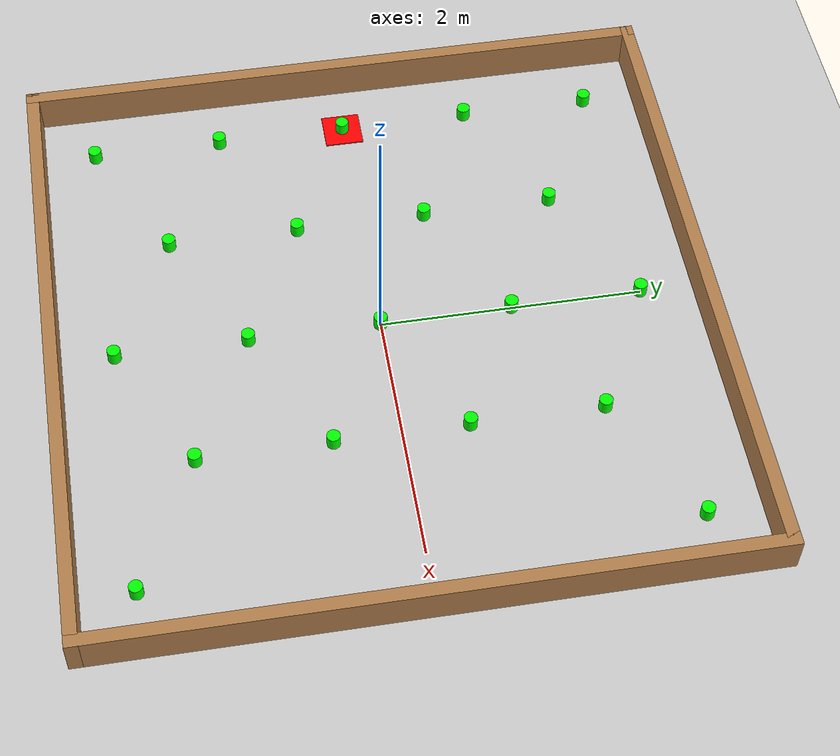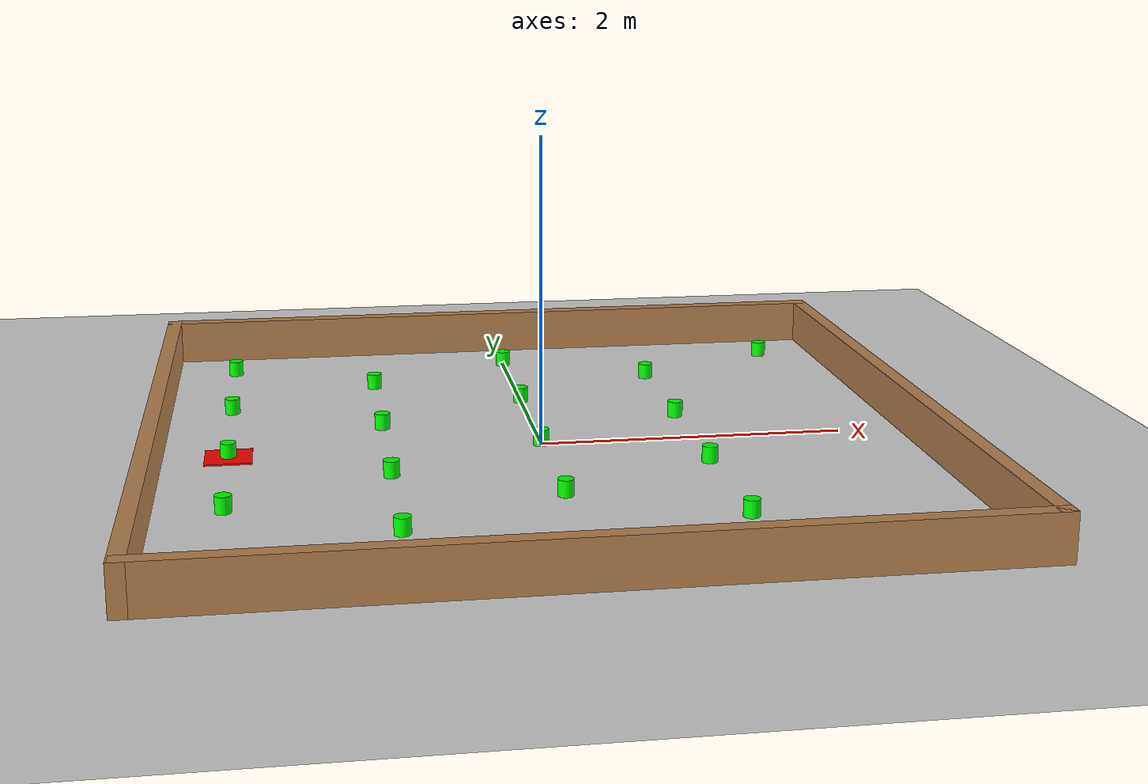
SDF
<sdf version="1.6">
 <world name="default">
  <model name="ground_plane">
   <static>1</static>
   <link name="link">
    <collision name="collision">
     <geometry><plane><normal>0 0 1</normal><size>100 100</size></plane></geometry>
     <surface>
      <contact><collide_bitmask>65535</collide_bitmask></contact>
      <friction><ode><mu>100</mu><mu2>50</mu2></ode></friction>
     </surface>
    </collision>
    <visual name="visual">
     <cast_shadows>0</cast_shadows>
     <geometry><plane><normal>0 0 1</normal><size>100 100</size></plane></geometry>
     <material>
      <script><uri>file://media/materials/scripts/gazebo.material</uri><name>Gazebo/Grey</name></script>
     </material>
    </visual>
   </link>
  </model>
  <model name="obstacle_1">
   <pose>1.0 -1.5 0.0 0 0 0</pose>
   <static>0</static>
   <link name="link">
    <inertial>
     <mass>1</mass>
     <inertia><ixx>0</ixx><ixy>0</ixy><ixz>0</ixz><iyy>0</iyy><iyz>0</iyz><izz>0</izz></inertia>
    </inertial>
    <collision name="collision">
     <geometry><cylinder><radius>0.0505</radius><length>0.2</length></cylinder></geometry>
     <surface><friction><ode><mu>0.0</mu><mu2>0.0</mu2></ode></friction></surface>
    </collision>
    <visual name="visual">
     <geometry><cylinder><radius>0.0505</radius><length>0.2</length></cylinder></geometry>
     <material>
      <lighting>1</lighting>
      <script><uri>file://media/materials/scripts/gazebo.material</uri><name>Gazebo/Grey</name></script>
      <shader type="pixel"><normal_map>__default__</normal_map></shader>
      <ambient>0.3 0.3 0.3 1</ambient>
      <diffuse>0 1 0 1</diffuse>
      <specular>0.01 0.01 0.01 1</specular>
      <emissive>0 0 0 1</emissive>
     </material>
    </visual>
   </link>
  </model>
  <model name="obstacle_2">
   <pose>1.0 -0.5 0.0 0 0 0</pose>
   <static>0</static>
   <link name="link">
    <inertial>
     <mass>1</mass>
     <inertia><ixx>0</ixx><ixy>0</ixy><ixz>0</ixz><iyy>0</iyy><iyz>0</iyz><izz>0</izz></inertia>
    </inertial>
    <collision name="collision">
     <geometry><cylinder><radius>0.0505</radius><length>0.2</length></cylinder></geometry>
     <surface><friction><ode><mu>0.0</mu><mu2>0.0</mu2></ode></friction></surface>
    </collision>
    <visual name="visual">
     <geometry><cylinder><radius>0.0505</radius><length>0.2</length></cylinder></geometry>
     <material>
      <lighting>1</lighting>
      <script><uri>file://media/materials/scripts/gazebo.material</uri><name>Gazebo/Grey</name></script>
      <shader type="pixel"><normal_map>__default__</normal_map></shader>
      <ambient>0.3 0.3 0.3 1</ambient>
      <diffuse>0 1 0 1</diffuse>
      <specular>0.01 0.01 0.01 1</specular>
      <emissive>0 0 0 1</emissive>
     </material>
    </visual>
   </link>
  </model>
  <model name="obstacle_3">
   <pose>1.0 0.5 0.0 0 0 0</pose>
   <static>0</static>
   <link name="link">
    <inertial>
     <mass>1</mass>
     <inertia><ixx>0</ixx><ixy>0</ixy><ixz>0</ixz><iyy>0</iyy><iyz>0</iyz><izz>0</izz></inertia>
    </inertial>
    <collision name="collision">
     <geometry><cylinder><radius>0.0505</radius><length>0.2</length></cylinder></geometry>
     <surface><friction><ode><mu>0.0</mu><mu2>0.0</mu2></ode></friction></surface>
    </collision>
    <visual name="visual">
     <geometry><cylinder><radius>0.0505</radius><length>0.2</length></cylinder></geometry>
     <material>
      <lighting>1</lighting>
      <script><uri>file://media/materials/scripts/gazebo.material</uri><name>Gazebo/Grey</name></script>
      <shader type="pixel"><normal_map>__default__</normal_map></shader>
      <ambient>0.3 0.3 0.3 1</ambient>
      <diffuse>0 1 0 1</diffuse>
      <specular>0.01 0.01 0.01 1</specular>
      <emissive>0 0 0 1</emissive>
     </material>
    </visual>
   </link>
  </model>
  <model name="obstacle_4">
   <pose>1.0 1.5 0.0 0 0 0</pose>
   <static>0</static>
   <link name="link">
    <inertial>
     <mass>1</mass>
     <inertia><ixx>0</ixx><ixy>0</ixy><ixz>0</ixz><iyy>0</iyy><iyz>0</iyz><izz>0</izz></inertia>
    </inertial>
    <collision name="collision">
     <geometry><cylinder><radius>0.0505</radius><length>0.2</length></cylinder></geometry>
     <surface><friction><ode><mu>0.0</mu><mu2>0.0</mu2></ode></friction></surface>
    </collision>
    <visual name="visual">
     <geometry><cylinder><radius>0.0505</radius><length>0.2</length></cylinder></geometry>
     <material>
      <lighting>1</lighting>
      <script><uri>file://media/materials/scripts/gazebo.material</uri><name>Gazebo/Grey</name></script>
      <shader type="pixel"><normal_map>__default__</normal_map></shader>
      <ambient>0.3 0.3 0.3 1</ambient>
      <diffuse>0 1 0 1</diffuse>
      <specular>0.01 0.01 0.01 1</specular>
      <emissive>0 0 0 1</emissive>
     </material>
    </visual>
   </link>
  </model>
  <model name="obstacle_5">
   <pose>0 -2.0 0.0 0 0 0</pose>
   <static>0</static>
   <link name="link">
    <inertial>
     <mass>1</mass>
     <inertia><ixx>0</ixx><ixy>0</ixy><ixz>0</ixz><iyy>0</iyy><iyz>0</iyz><izz>0</izz></inertia>
    </inertial>
    <collision name="collision">
     <geometry><cylinder><radius>0.0505</radius><length>0.2</length></cylinder></geometry>
     <surface><friction><ode><mu>0.0</mu><mu2>0.0</mu2></ode></friction></surface>
    </collision>
    <visual name="visual">
     <geometry><cylinder><radius>0.0505</radius><length>0.2</length></cylinder></geometry>
     <material>
      <lighting>1</lighting>
      <script><uri>file://media/materials/scripts/gazebo.material</uri><name>Gazebo/Grey</name></script>
      <shader type="pixel"><normal_map>__default__</normal_map></shader>
      <ambient>0.3 0.3 0.3 1</ambient>
      <diffuse>0 1 0 1</diffuse>
      <specular>0.01 0.01 0.01 1</specular>
      <emissive>0 0 0 1</emissive>
     </material>
    </visual>
   </link>
  </model>
  <model name="obstacle_6">
   <pose>0 -1.0 0.0 0 0 0</pose>
   <static>0</static>
   <link name="link">
    <inertial>
     <mass>1</mass>
     <inertia><ixx>0</ixx><ixy>0</ixy><ixz>0</ixz><iyy>0</iyy><iyz>0</iyz><izz>0</izz></inertia>
    </inertial>
    <collision name="collision">
     <geometry><cylinder><radius>0.0505</radius><length>0.2</length></cylinder></geometry>
     <surface><friction><ode><mu>0.0</mu><mu2>0.0</mu2></ode></friction></surface>
    </collision>
    <visual name="visual">
     <geometry><cylinder><radius>0.0505</radius><length>0.2</length></cylinder></geometry>
     <material>
      <lighting>1</lighting>
      <script><uri>file://media/materials/scripts/gazebo.material</uri><name>Gazebo/Grey</name></script>
      <shader type="pixel"><normal_map>__default__</normal_map></shader>
      <ambient>0.3 0.3 0.3 1</ambient>
      <diffuse>0 1 0 1</diffuse>
      <specular>0.01 0.01 0.01 1</specular>
      <emissive>0 0 0 1</emissive>
     </material>
    </visual>
   </link>
  </model>
  <model name="obstacle_7">
   <static>0</static>
   <link name="link">
    <inertial>
     <mass>1</mass>
     <inertia><ixx>0</ixx><ixy>0</ixy><ixz>0</ixz><iyy>0</iyy><iyz>0</iyz><izz>0</izz></inertia>
    </inertial>
    <collision name="collision">
     <geometry><cylinder><radius>0.0505</radius><length>0.2</length></cylinder></geometry>
     <surface><friction><ode><mu>0.0</mu><mu2>0.0</mu2></ode></friction></surface>
    </collision>
    <visual name="visual">
     <geometry><cylinder><radius>0.0505</radius><length>0.2</length></cylinder></geometry>
     <material>
      <lighting>1</lighting>
      <script><uri>file://media/materials/scripts/gazebo.material</uri><name>Gazebo/Grey</name></script>
      <shader type="pixel"><normal_map>__default__</normal_map></shader>
      <ambient>0.3 0.3 0.3 1</ambient>
      <diffuse>0 1 0 1</diffuse>
      <specular>0.01 0.01 0.01 1</specular>
      <emissive>0 0 0 1</emissive>
     </material>
    </visual>
   </link>
  </model>
  <model name="obstacle_8">
   <pose>0 1.0 0.0 0 0 0</pose>
   <static>0</static>
   <link name="link">
    <inertial>
     <mass>1</mass>
     <inertia><ixx>0</ixx><ixy>0</ixy><ixz>0</ixz><iyy>0</iyy><iyz>0</iyz><izz>0</izz></inertia>
    </inertial>
    <collision name="collision">
     <geometry><cylinder><radius>0.0505</radius><length>0.2</length></cylinder></geometry>
     <surface><friction><ode><mu>0.0</mu><mu2>0.0</mu2></ode></friction></surface>
    </collision>
    <visual name="visual">
     <geometry><cylinder><radius>0.0505</radius><length>0.2</length></cylinder></geometry>
     <material>
      <lighting>1</lighting>
      <script><uri>file://media/materials/scripts/gazebo.material</uri><name>Gazebo/Grey</name></script>
      <shader type="pixel"><normal_map>__default__</normal_map></shader>
      <ambient>0.3 0.3 0.3 1</ambient>
      <diffuse>0 1 0 1</diffuse>
      <specular>0.01 0.01 0.01 1</specular>
      <emissive>0 0 0 1</emissive>
     </material>
    </visual>
   </link>
  </model>
  <model name="obstacle_9">
   <pose>0 2.0 0.0 0 0 0</pose>
   <static>0</static>
   <link name="link">
    <inertial>
     <mass>1</mass>
     <inertia><ixx>0</ixx><ixy>0</ixy><ixz>0</ixz><iyy>0</iyy><iyz>0</iyz><izz>0</izz></inertia>
    </inertial>
    <collision name="collision">
     <geometry><cylinder><radius>0.0505</radius><length>0.2</length></cylinder></geometry>
     <surface><friction><ode><mu>0.0</mu><mu2>0.0</mu2></ode></friction></surface>
    </collision>
    <visual name="visual">
     <geometry><cylinder><radius>0.0505</radius><length>0.2</length></cylinder></geometry>
     <material>
      <lighting>1</lighting>
      <script><uri>file://media/materials/scripts/gazebo.material</uri><name>Gazebo/Grey</name></script>
      <shader type="pixel"><normal_map>__default__</normal_map></shader>
      <ambient>0.3 0.3 0.3 1</ambient>
      <diffuse>0 1 0 1</diffuse>
      <specular>0.01 0.01 0.01 1</specular>
      <emissive>0 0 0 1</emissive>
     </material>
    </visual>
   </link>
  </model>
  <model name="obstacle_10">
   <pose>-1.0 -1.5 0.0 0 0 0</pose>
   <static>0</static>
   <link name="link">
    <inertial>
     <mass>1</mass>
     <inertia><ixx>0</ixx><ixy>0</ixy><ixz>0</ixz><iyy>0</iyy><iyz>0</iyz><izz>0</izz></inertia>
    </inertial>
    <collision name="collision">
     <geometry><cylinder><radius>0.0505</radius><length>0.2</length></cylinder></geometry>
     <surface><friction><ode><mu>0.0</mu><mu2>0.0</mu2></ode></friction></surface>
    </collision>
    <visual name="visual">
     <geometry><cylinder><radius>0.0505</radius><length>0.2</length></cylinder></geometry>
     <material>
      <lighting>1</lighting>
      <script><uri>file://media/materials/scripts/gazebo.material</uri><name>Gazebo/Grey</name></script>
      <shader type="pixel"><normal_map>__default__</normal_map></shader>
      <ambient>0.3 0.3 0.3 1</ambient>
      <diffuse>0 1 0 1</diffuse>
      <specular>0.01 0.01 0.01 1</specular>
      <emissive>0 0 0 1</emissive>
     </material>
    </visual>
   </link>
  </model>
  <model name="obstacle_11">
   <pose>-1.0 -0.5 0.0 0 0 0</pose>
   <static>0</static>
   <link name="link">
    <inertial>
     <mass>1</mass>
     <inertia><ixx>0</ixx><ixy>0</ixy><ixz>0</ixz><iyy>0</iyy><iyz>0</iyz><izz>0</izz></inertia>
    </inertial>
    <collision name="collision">
     <geometry><cylinder><radius>0.0505</radius><length>0.2</length></cylinder></geometry>
     <surface><friction><ode><mu>0.0</mu><mu2>0.0</mu2></ode></friction></surface>
    </collision>
    <visual name="visual">
     <geometry><cylinder><radius>0.0505</radius><length>0.2</length></cylinder></geometry>
     <material>
      <lighting>1</lighting>
      <script><uri>file://media/materials/scripts/gazebo.material</uri><name>Gazebo/Grey</name></script>
      <shader type="pixel"><normal_map>__default__</normal_map></shader>
      <ambient>0.3 0.3 0.3 1</ambient>
      <diffuse>0 1 0 1</diffuse>
      <specular>0.01 0.01 0.01 1</specular>
      <emissive>0 0 0 1</emissive>
     </material>
    </visual>
   </link>
  </model>
  <model name="obstacle_12">
   <pose>-1.0 0.5 0.0 0 0 0</pose>
   <static>0</static>
   <link name="link">
    <inertial>
     <mass>1</mass>
     <inertia><ixx>0</ixx><ixy>0</ixy><ixz>0</ixz><iyy>0</iyy><iyz>0</iyz><izz>0</izz></inertia>
    </inertial>
    <collision name="collision">
     <geometry><cylinder><radius>0.0505</radius><length>0.2</length></cylinder></geometry>
     <surface><friction><ode><mu>0.0</mu><mu2>0.0</mu2></ode></friction></surface>
    </collision>
    <visual name="visual">
     <geometry><cylinder><radius>0.0505</radius><length>0.2</length></cylinder></geometry>
     <material>
      <lighting>1</lighting>
      <script><uri>file://media/materials/scripts/gazebo.material</uri><name>Gazebo/Grey</name></script>
      <shader type="pixel"><normal_map>__default__</normal_map></shader>
      <ambient>0.3 0.3 0.3 1</ambient>
      <diffuse>0 1 0 1</diffuse>
      <specular>0.01 0.01 0.01 1</specular>
      <emissive>0 0 0 1</emissive>
     </material>
    </visual>
   </link>
  </model>
  <model name="obstacle_13">
   <pose>-1.0 1.5 0.0 0 0 0</pose>
   <static>0</static>
   <link name="link">
    <inertial>
     <mass>1</mass>
     <inertia><ixx>0</ixx><ixy>0</ixy><ixz>0</ixz><iyy>0</iyy><iyz>0</iyz><izz>0</izz></inertia>
    </inertial>
    <collision name="collision">
     <geometry><cylinder><radius>0.0505</radius><length>0.2</length></cylinder></geometry>
     <surface><friction><ode><mu>0.0</mu><mu2>0.0</mu2></ode></friction></surface>
    </collision>
    <visual name="visual">
     <geometry><cylinder><radius>0.0505</radius><length>0.2</length></cylinder></geometry>
     <material>
      <lighting>1</lighting>
      <script><uri>file://media/materials/scripts/gazebo.material</uri><name>Gazebo/Grey</name></script>
      <shader type="pixel"><normal_map>__default__</normal_map></shader>
      <ambient>0.3 0.3 0.3 1</ambient>
      <diffuse>0 1 0 1</diffuse>
      <specular>0.01 0.01 0.01 1</specular>
      <emissive>0 0 0 1</emissive>
     </material>
    </visual>
   </link>
  </model>
  <model name="obstacle_14">
   <pose>-2.0 -2.0 0.0 0 0 0</pose>
   <static>0</static>
   <link name="link">
    <inertial>
     <mass>1</mass>
     <inertia><ixx>0</ixx><ixy>0</ixy><ixz>0</ixz><iyy>0</iyy><iyz>0</iyz><izz>0</izz></inertia>
    </inertial>
    <collision name="collision">
     <geometry><cylinder><radius>0.0505</radius><length>0.2</length></cylinder></geometry>
     <surface><friction><ode><mu>0.0</mu><mu2>0.0</mu2></ode></friction></surface>
    </collision>
    <visual name="visual">
     <geometry><cylinder><radius>0.0505</radius><length>0.2</length></cylinder></geometry>
     <material>
      <lighting>1</lighting>
      <script><uri>file://media/materials/scripts/gazebo.material</uri><name>Gazebo/Grey</name></script>
      <shader type="pixel"><normal_map>__default__</normal_map></shader>
      <ambient>0.3 0.3 0.3 1</ambient>
      <diffuse>0 1 0 1</diffuse>
      <specular>0.01 0.01 0.01 1</specular>
      <emissive>0 0 0 1</emissive>
     </material>
    </visual>
   </link>
  </model>
  <model name="obstacle_15">
   <pose>-2.0 -1.0 0.0 0 0 0</pose>
   <static>0</static>
   <link name="link">
    <inertial>
     <mass>1</mass>
     <inertia><ixx>0</ixx><ixy>0</ixy><ixz>0</ixz><iyy>0</iyy><iyz>0</iyz><izz>0</izz></inertia>
    </inertial>
    <collision name="collision">
     <geometry><cylinder><radius>0.0505</radius><length>0.2</length></cylinder></geometry>
     <surface><friction><ode><mu>0.0</mu><mu2>0.0</mu2></ode></friction></surface>
    </collision>
    <visual name="visual">
     <geometry><cylinder><radius>0.0505</radius><length>0.2</length></cylinder></geometry>
     <material>
      <lighting>1</lighting>
      <script><uri>file://media/materials/scripts/gazebo.material</uri><name>Gazebo/Grey</name></script>
      <shader type="pixel"><normal_map>__default__</normal_map></shader>
      <ambient>0.3 0.3 0.3 1</ambient>
      <diffuse>0 1 0 1</diffuse>
      <specular>0.01 0.01 0.01 1</specular>
      <emissive>0 0 0 1</emissive>
     </material>
    </visual>
   </link>
  </model>
  <model name="obstacle_16">
   <pose>-2.0 0 0.0 0 0 0</pose>
   <static>0</static>
   <link name="link">
    <inertial>
     <mass>1</mass>
     <inertia><ixx>0</ixx><ixy>0</ixy><ixz>0</ixz><iyy>0</iyy><iyz>0</iyz><izz>0</izz></inertia>
    </inertial>
    <collision name="collision">
     <geometry><cylinder><radius>0.0505</radius><length>0.2</length></cylinder></geometry>
     <surface><friction><ode><mu>0.0</mu><mu2>0.0</mu2></ode></friction></surface>
    </collision>
    <visual name="visual">
     <geometry><cylinder><radius>0.0505</radius><length>0.2</length></cylinder></geometry>
     <material>
      <lighting>1</lighting>
      <script><uri>file://media/materials/scripts/gazebo.material</uri><name>Gazebo/Grey</name></script>
      <shader type="pixel"><normal_map>__default__</normal_map></shader>
      <ambient>0.3 0.3 0.3 1</ambient>
      <diffuse>0 1 0 1</diffuse>
      <specular>0.01 0.01 0.01 1</specular>
      <emissive>0 0 0 1</emissive>
     </material>
    </visual>
   </link>
  </model>
  <model name="obstacle_17">
   <pose>-2.0 1.0 0.0 0 0 0</pose>
   <static>0</static>
   <link name="link">
    <inertial>
     <mass>1</mass>
     <inertia><ixx>0</ixx><ixy>0</ixy><ixz>0</ixz><iyy>0</iyy><iyz>0</iyz><izz>0</izz></inertia>
    </inertial>
    <collision name="collision">
     <geometry><cylinder><radius>0.0505</radius><length>0.2</length></cylinder></geometry>
     <surface><friction><ode><mu>0.0</mu><mu2>0.0</mu2></ode></friction></surface>
    </collision>
    <visual name="visual">
     <geometry><cylinder><radius>0.0505</radius><length>0.2</length></cylinder></geometry>
     <material>
      <lighting>1</lighting>
      <script><uri>file://media/materials/scripts/gazebo.material</uri><name>Gazebo/Grey</name></script>
      <shader type="pixel"><normal_map>__default__</normal_map></shader>
      <ambient>0.3 0.3 0.3 1</ambient>
      <diffuse>0 1 0 1</diffuse>
      <specular>0.01 0.01 0.01 1</specular>
      <emissive>0 0 0 1</emissive>
     </material>
    </visual>
   </link>
  </model>
  <model name="obstacle_18">
   <pose>-2.0 2.0 0.0 0 0 0</pose>
   <static>0</static>
   <link name="link">
    <inertial>
     <mass>1</mass>
     <inertia><ixx>0</ixx><ixy>0</ixy><ixz>0</ixz><iyy>0</iyy><iyz>0</iyz><izz>0</izz></inertia>
    </inertial>
    <collision name="collision">
     <geometry><cylinder><radius>0.0505</radius><length>0.2</length></cylinder></geometry>
     <surface><friction><ode><mu>0.0</mu><mu2>0.0</mu2></ode></friction></surface>
    </collision>
    <visual name="visual">
     <geometry><cylinder><radius>0.0505</radius><length>0.2</length></cylinder></geometry>
     <material>
      <lighting>1</lighting>
      <script><uri>file://media/materials/scripts/gazebo.material</uri><name>Gazebo/Grey</name></script>
      <shader type="pixel"><normal_map>__default__</normal_map></shader>
      <ambient>0.3 0.3 0.3 1</ambient>
      <diffuse>0 1 0 1</diffuse>
      <specular>0.01 0.01 0.01 1</specular>
      <emissive>0 0 0 1</emissive>
     </material>
    </visual>
   </link>
  </model>
  <model name="obstacle_19">
   <pose>2.0 -2.0 0.0 0 0 0</pose>
   <static>0</static>
   <link name="link">
    <inertial>
     <mass>1</mass>
     <inertia><ixx>0</ixx><ixy>0</ixy><ixz>0</ixz><iyy>0</iyy><iyz>0</iyz><izz>0</izz></inertia>
    </inertial>
    <collision name="collision">
     <geometry><cylinder><radius>0.0505</radius><length>0.2</length></cylinder></geometry>
     <surface><friction><ode><mu>0.0</mu><mu2>0.0</mu2></ode></friction></surface>
    </collision>
    <visual name="visual">
     <geometry><cylinder><radius>0.0505</radius><length>0.2</length></cylinder></geometry>
     <material>
      <lighting>1</lighting>
      <script><uri>file://media/materials/scripts/gazebo.material</uri><name>Gazebo/Grey</name></script>
      <shader type="pixel"><normal_map>__default__</normal_map></shader>
      <ambient>0.3 0.3 0.3 1</ambient>
      <diffuse>0 1 0 1</diffuse>
      <specular>0.01 0.01 0.01 1</specular>
      <emissive>0 0 0 1</emissive>
     </material>
    </visual>
   </link>
  </model>
  <model name="obstacle_20">
   <pose>2.0 2.0 0.0 0 0 0</pose>
   <static>0</static>
   <link name="link">
    <inertial>
     <mass>1</mass>
     <inertia><ixx>0</ixx><ixy>0</ixy><ixz>0</ixz><iyy>0</iyy><iyz>0</iyz><izz>0</izz></inertia>
    </inertial>
    <collision name="collision">
     <geometry><cylinder><radius>0.0505</radius><length>0.2</length></cylinder></geometry>
     <surface><friction><ode><mu>0.0</mu><mu2>0.0</mu2></ode></friction></surface>
    </collision>
    <visual name="visual">
     <geometry><cylinder><radius>0.0505</radius><length>0.2</length></cylinder></geometry>
     <material>
      <lighting>1</lighting>
      <script><uri>file://media/materials/scripts/gazebo.material</uri><name>Gazebo/Grey</name></script>
      <shader type="pixel"><normal_map>__default__</normal_map></shader>
      <ambient>0.3 0.3 0.3 1</ambient>
      <diffuse>0 1 0 1</diffuse>
      <specular>0.01 0.01 0.01 1</specular>
      <emissive>0 0 0 1</emissive>
     </material>
    </visual>
   </link>
  </model>
  <model name="square_room">
   <pose>-0.006074 0.005376 0 0 -0 0</pose>
   <link name="Wall_0">
    <collision name="Wall_0_Collision">
     <geometry><box><size>5 0.1 0.3</size></box></geometry>
     <pose>0 0 0.15 0 -0 0</pose>
    </collision>
    <visual name="Wall_0_Visual">
     <pose>0 0 0.15 0 -0 0</pose>
     <geometry><box><size>5 0.1 0.3</size></box></geometry>
     <material>
      <script><uri>file://media/materials/scripts/gazebo.material</uri><name>Gazebo/Wood</name></script>
      <ambient>1 1 1 1</ambient>
     </material>
     <meta><layer>0</layer></meta>
    </visual>
    <pose>-0 2.45 0 0 -0 0</pose>
   </link>
   <link name="Wall_1">
    <collision name="Wall_1_Collision">
     <geometry><box><size>5 0.1 0.3</size></box></geometry>
     <pose>0 0 0.15 0 -0 0</pose>
    </collision>
    <visual name="Wall_1_Visual">
     <pose>0 0 0.15 0 -0 0</pose>
     <geometry><box><size>5 0.1 0.3</size></box></geometry>
     <material>
      <script><uri>file://media/materials/scripts/gazebo.material</uri><name>Gazebo/Wood</name></script>
      <ambient>1 1 1 1</ambient>
     </material>
     <meta><layer>0</layer></meta>
    </visual>
    <pose>2.455 0 0 0 -0 -1.5708</pose>
   </link>
   <link name="Wall_2">
    <collision name="Wall_2_Collision">
     <geometry><box><size>5 0.1 0.3</size></box></geometry>
     <pose>0 0 0.15 0 -0 0</pose>
    </collision>
    <visual name="Wall_2_Visual">
     <pose>0 0 0.15 0 -0 0</pose>
     <geometry><box><size>5 0.1 0.3</size></box></geometry>
     <material>
      <script><uri>file://media/materials/scripts/gazebo.material</uri><name>Gazebo/Wood</name></script>
      <ambient>1 1 1 1</ambient>
     </material>
     <meta><layer>0</layer></meta>
    </visual>
    <pose>0.005 -2.45 0 0 -0 3.14159</pose>
   </link>
   <link name="Wall_3">
    <collision name="Wall_3_Collision">
     <geometry><box><size>5 0.1 0.3</size></box></geometry>
     <pose>0 0 0.15 0 -0 0</pose>
    </collision>
    <visual name="Wall_3_Visual">
     <pose>0 0 0.15 0 -0 0</pose>
     <geometry><box><size>5 0.1 0.3</size></box></geometry>
     <material>
      <script><uri>file://media/materials/scripts/gazebo.material</uri><name>Gazebo/Wood</name></script>
      <ambient>1 1 1 1</ambient>
     </material>
     <meta><layer>0</layer></meta>
    </visual>
    <pose>-2.455 0 0 0 -0 1.5708</pose>
   </link>
   <static>1</static>
  </model>
  <model name="goal_region">
   <link name="link_0">
    <inertial>
     <mass>1</mass>
     <inertia>
      <ixx>0.166667</ixx>
      <ixy>0</ixy>
      <ixz>0</ixz>
      <iyy>0.166667</iyy>
      <iyz>0</iyz>
      <izz>0.166667</izz>
     </inertia>
    </inertial>
    <gravity>0</gravity>
    <visual name="visual">
     <geometry><box><size>0.3 0.3 0.01</size></box></geometry>
     <material>
      <lighting>1</lighting>
      <script><uri>file://media/materials/scripts/gazebo.material</uri><name>Gazebo/Grey</name></script>
      <shader type="pixel"><normal_map>__default__</normal_map></shader>
      <ambient>0.3 0.3 0.3 1</ambient>
      <diffuse>1 0 0 1</diffuse>
      <specular>0.01 0.01 0.01 1</specular>
      <emissive>0 0 0 1</emissive>
     </material>
    </visual>
   </link>
   <static>0</static>
   <pose>-2 0 0 0 -0 0</pose>
  </model>
 </world>
</sdf>
